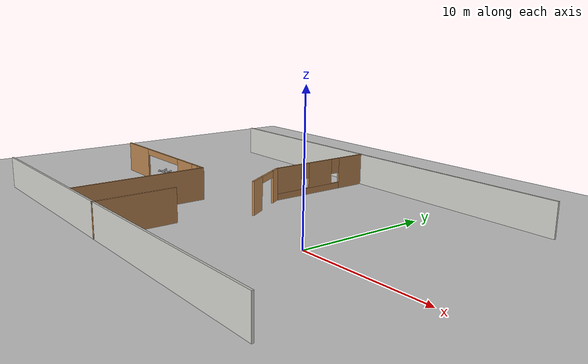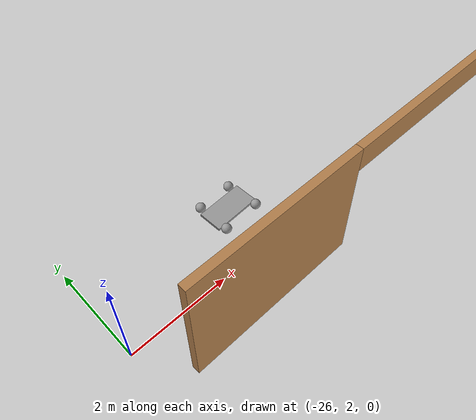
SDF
<sdf version="1.6">
 <world name="default">
  <model name="ground_plane">
   <static>1</static>
   <link name="link">
    <collision name="collision">
     <geometry><plane><normal>0 0 1</normal><size>100 100</size></plane></geometry>
     <surface>
      <contact><collide_bitmask>65535</collide_bitmask></contact>
      <friction><ode><mu>100</mu><mu2>50</mu2></ode></friction>
     </surface>
    </collision>
    <visual name="visual">
     <cast_shadows>0</cast_shadows>
     <geometry><plane><normal>0 0 1</normal><size>100 100</size></plane></geometry>
     <material>
      <script><uri>file://media/materials/scripts/gazebo.material</uri><name>Gazebo/Grey</name></script>
     </material>
    </visual>
   </link>
  </model>
  <model name="bigHouse">
   <pose>-26.8831 -3.8622 0 0 -0 0</pose>
   <link name="Wall_10">
    <pose>7.59462 4.97423 0 0 -0 0</pose>
    <visual name="Wall_10_Visual_0">
     <pose>-4.3849 0 1.25 0 -0 0</pose>
     <geometry><box><size>3.48019 0.15 2.5</size></box></geometry>
     <material>
      <script><uri>file://media/materials/scripts/gazebo.material</uri><name>Gazebo/Wood</name></script>
      <ambient>1 1 1 1</ambient>
     </material>
     <meta><layer>0</layer></meta>
    </visual>
    <collision name="Wall_10_Collision_0">
     <geometry><box><size>3.48019 0.15 2.5</size></box></geometry>
     <pose>-4.3849 0 1.25 0 -0 0</pose>
    </collision>
    <visual name="Wall_10_Visual_1">
     <pose>3.45765 0 1.25 0 -0 0</pose>
     <geometry><box><size>2.20491 0.15 2.5</size></box></geometry>
     <material>
      <script><uri>file://media/materials/scripts/gazebo.material</uri><name>Gazebo/Wood</name></script>
      <ambient>1 1 1 1</ambient>
     </material>
     <meta><layer>0</layer></meta>
    </visual>
    <collision name="Wall_10_Collision_1">
     <geometry><box><size>2.20491 0.15 2.5</size></box></geometry>
     <pose>3.45765 0 1.25 0 -0 0</pose>
    </collision>
    <visual name="Wall_10_Visual_2">
     <pose>5.34255 0 0.25 0 -0 0</pose>
     <geometry><box><size>1.56489 0.15 0.5</size></box></geometry>
     <material>
      <script><uri>file://media/materials/scripts/gazebo.material</uri><name>Gazebo/Wood</name></script>
      <ambient>1 1 1 1</ambient>
     </material>
     <meta><layer>0</layer></meta>
    </visual>
    <collision name="Wall_10_Collision_2">
     <geometry><box><size>1.56489 0.15 0.5</size></box></geometry>
     <pose>5.34255 0 0.25 0 -0 0</pose>
    </collision>
    <visual name="Wall_10_Visual_3">
     <pose>5.74255 0 1.5 0 -0 0</pose>
     <geometry><box><size>0.764895 0.15 2</size></box></geometry>
     <material>
      <script><uri>file://media/materials/scripts/gazebo.material</uri><name>Gazebo/Wood</name></script>
      <ambient>1 1 1 1</ambient>
     </material>
     <meta><layer>0</layer></meta>
    </visual>
    <collision name="Wall_10_Collision_3">
     <geometry><box><size>0.764895 0.15 2</size></box></geometry>
     <pose>5.74255 0 1.5 0 -0 0</pose>
    </collision>
    <visual name="Wall_10_Visual_4">
     <pose>4.96011 0 1.9 0 -0 0</pose>
     <geometry><box><size>0.8 0.15 1.2</size></box></geometry>
     <material>
      <script><uri>file://media/materials/scripts/gazebo.material</uri><name>Gazebo/Wood</name></script>
      <ambient>1 1 1 1</ambient>
     </material>
     <meta><layer>0</layer></meta>
    </visual>
    <collision name="Wall_10_Collision_4">
     <geometry><box><size>0.8 0.15 1.2</size></box></geometry>
     <pose>4.96011 0 1.9 0 -0 0</pose>
    </collision>
    <visual name="Wall_10_Visual_5">
     <pose>-0.144808 0 2.25 0 -0 0</pose>
     <geometry><box><size>5 0.15 0.5</size></box></geometry>
     <material>
      <script><uri>file://media/materials/scripts/gazebo.material</uri><name>Gazebo/Wood</name></script>
      <ambient>1 1 1 1</ambient>
     </material>
     <meta><layer>0</layer></meta>
    </visual>
    <collision name="Wall_10_Collision_5">
     <geometry><box><size>5 0.15 0.5</size></box></geometry>
     <pose>-0.144808 0 2.25 0 -0 0</pose>
    </collision>
   </link>
   <link name="Wall_11">
    <collision name="Wall_11_Collision">
     <geometry><box><size>10.5 0.15 2.5</size></box></geometry>
     <pose>0 0 1.25 0 -0 0</pose>
    </collision>
    <visual name="Wall_11_Visual">
     <pose>0 0 1.25 0 -0 0</pose>
     <geometry><box><size>10.5 0.15 2.5</size></box></geometry>
     <material>
      <script><uri>file://media/materials/scripts/gazebo.material</uri><name>Gazebo/Wood</name></script>
      <ambient>1 1 1 1</ambient>
     </material>
     <meta><layer>0</layer></meta>
    </visual>
    <pose>13.6446 -0.200766 0 0 0 -1.5708</pose>
   </link>
   <link name="Wall_15">
    <collision name="Wall_15_Collision">
     <geometry><box><size>6.06003 0.15 2.5</size></box></geometry>
     <pose>0 0 1.25 0 -0 0</pose>
    </collision>
    <visual name="Wall_15_Visual">
     <pose>0 0 1.25 0 -0 0</pose>
     <geometry><box><size>6.06003 0.15 2.5</size></box></geometry>
     <material>
      <script><uri>file://media/materials/scripts/gazebo.material</uri><name>Gazebo/Wood</name></script>
      <ambient>1 1 1 1</ambient>
     </material>
     <meta><layer>0</layer></meta>
    </visual>
    <pose>17.5861 -2.57747 0 0 -0 1.5708</pose>
   </link>
   <link name="Wall_17">
    <pose>17.1284 13.8352 0 0 0 -1.5708</pose>
    <visual name="Wall_17_Visual_0">
     <pose>-3.18124 0 1.25 0 -0 0</pose>
     <geometry><box><size>2.63752 0.15 2.5</size></box></geometry>
     <material>
      <script><uri>file://media/materials/scripts/gazebo.material</uri><name>Gazebo/Wood</name></script>
      <ambient>1 1 1 1</ambient>
     </material>
     <meta><layer>0</layer></meta>
    </visual>
    <collision name="Wall_17_Collision_0">
     <geometry><box><size>2.63752 0.15 2.5</size></box></geometry>
     <pose>-3.18124 0 1.25 0 -0 0</pose>
    </collision>
    <visual name="Wall_17_Visual_1">
     <pose>1.31876 0 0.25 0 -0 0</pose>
     <geometry><box><size>6.36248 0.15 0.5</size></box></geometry>
     <material>
      <script><uri>file://media/materials/scripts/gazebo.material</uri><name>Gazebo/Wood</name></script>
      <ambient>1 1 1 1</ambient>
     </material>
     <meta><layer>0</layer></meta>
    </visual>
    <collision name="Wall_17_Collision_1">
     <geometry><box><size>6.36248 0.15 0.5</size></box></geometry>
     <pose>1.31876 0 0.25 0 -0 0</pose>
    </collision>
    <visual name="Wall_17_Visual_2">
     <pose>0.110682 0 1.5 0 -0 0</pose>
     <geometry><box><size>2.34633 0.15 2</size></box></geometry>
     <material>
      <script><uri>file://media/materials/scripts/gazebo.material</uri><name>Gazebo/Wood</name></script>
      <ambient>1 1 1 1</ambient>
     </material>
     <meta><layer>0</layer></meta>
    </visual>
    <collision name="Wall_17_Collision_2">
     <geometry><box><size>2.34633 0.15 2</size></box></geometry>
     <pose>0.110682 0 1.5 0 -0 0</pose>
    </collision>
    <visual name="Wall_17_Visual_3">
     <pose>3.29192 0 1.5 0 -0 0</pose>
     <geometry><box><size>2.41615 0.15 2</size></box></geometry>
     <material>
      <script><uri>file://media/materials/scripts/gazebo.material</uri><name>Gazebo/Wood</name></script>
      <ambient>1 1 1 1</ambient>
     </material>
     <meta><layer>0</layer></meta>
    </visual>
    <collision name="Wall_17_Collision_3">
     <geometry><box><size>2.41615 0.15 2</size></box></geometry>
     <pose>3.29192 0 1.5 0 -0 0</pose>
    </collision>
    <visual name="Wall_17_Visual_4">
     <pose>-1.46248 0 1.9 0 -0 0</pose>
     <geometry><box><size>0.8 0.15 1.2</size></box></geometry>
     <material>
      <script><uri>file://media/materials/scripts/gazebo.material</uri><name>Gazebo/Wood</name></script>
      <ambient>1 1 1 1</ambient>
     </material>
     <meta><layer>0</layer></meta>
    </visual>
    <collision name="Wall_17_Collision_4">
     <geometry><box><size>0.8 0.15 1.2</size></box></geometry>
     <pose>-1.46248 0 1.9 0 -0 0</pose>
    </collision>
    <visual name="Wall_17_Visual_5">
     <pose>1.68385 0 1.9 0 -0 0</pose>
     <geometry><box><size>0.8 0.15 1.2</size></box></geometry>
     <material>
      <script><uri>file://media/materials/scripts/gazebo.material</uri><name>Gazebo/Wood</name></script>
      <ambient>1 1 1 1</ambient>
     </material>
     <meta><layer>0</layer></meta>
    </visual>
    <collision name="Wall_17_Collision_5">
     <geometry><box><size>0.8 0.15 1.2</size></box></geometry>
     <pose>1.68385 0 1.9 0 -0 0</pose>
    </collision>
   </link>
   <link name="Wall_18">
    <pose>18.2159 7.5266 0 0 0 -1.0472</pose>
    <visual name="Wall_18_Visual_0">
     <pose>-1.74861 0 1.25 0 -0 0</pose>
     <geometry><box><size>1.00278 0.15 2.5</size></box></geometry>
     <material>
      <script><uri>file://media/materials/scripts/gazebo.material</uri><name>Gazebo/Wood</name></script>
      <ambient>1 1 1 1</ambient>
     </material>
     <meta><layer>0</layer></meta>
    </visual>
    <collision name="Wall_18_Collision_0">
     <geometry><box><size>1.00278 0.15 2.5</size></box></geometry>
     <pose>-1.74861 0 1.25 0 -0 0</pose>
    </collision>
    <visual name="Wall_18_Visual_1">
     <pose>1.50139 0 1.25 0 -0 0</pose>
     <geometry><box><size>1.49722 0.15 2.5</size></box></geometry>
     <material>
      <script><uri>file://media/materials/scripts/gazebo.material</uri><name>Gazebo/Wood</name></script>
      <ambient>1 1 1 1</ambient>
     </material>
     <meta><layer>0</layer></meta>
    </visual>
    <collision name="Wall_18_Collision_1">
     <geometry><box><size>1.49722 0.15 2.5</size></box></geometry>
     <pose>1.50139 0 1.25 0 -0 0</pose>
    </collision>
    <visual name="Wall_18_Visual_2">
     <pose>-0.247217 0 2.25 0 -0 0</pose>
     <geometry><box><size>2 0.15 0.5</size></box></geometry>
     <material>
      <script><uri>file://media/materials/scripts/gazebo.material</uri><name>Gazebo/Wood</name></script>
      <ambient>1 1 1 1</ambient>
     </material>
     <meta><layer>0</layer></meta>
    </visual>
    <collision name="Wall_18_Collision_2">
     <geometry><box><size>2 0.15 0.5</size></box></geometry>
     <pose>-0.247217 0 2.25 0 -0 0</pose>
    </collision>
   </link>
   <link name="Wall_6">
    <collision name="Wall_6_Collision">
     <geometry><box><size>33.25 0.15 2.5</size></box></geometry>
     <pose>0 0 1.25 0 -0 0</pose>
    </collision>
    <visual name="Wall_6_Visual">
     <pose>0 0 1.25 0 -0 0</pose>
     <geometry><box><size>33.25 0.15 2.5</size></box></geometry>
     <material>
      <script><uri>file://media/materials/scripts/gazebo.material</uri><name>Gazebo/CeilingTiled</name></script>
      <ambient>1 1 1 1</ambient>
     </material>
     <meta><layer>0</layer></meta>
    </visual>
    <pose>18.0322 -5.51252 0 0 -0 0</pose>
   </link>
   <link name="Wall_8">
    <collision name="Wall_8_Collision">
     <geometry><box><size>33.2509 0.15 2.5</size></box></geometry>
     <pose>0 0 1.25 0 -0 0</pose>
    </collision>
    <visual name="Wall_8_Visual">
     <pose>0 0 1.25 0 -0 0</pose>
     <geometry><box><size>33.2509 0.15 2.5</size></box></geometry>
     <material>
      <script><uri>file://media/materials/scripts/gazebo.material</uri><name>Gazebo/CeilingTiled</name></script>
      <ambient>1 1 1 1</ambient>
     </material>
     <meta><layer>0</layer></meta>
    </visual>
    <pose>18.0322 18.2125 0 0 -0 3.13404</pose>
   </link>
   <static>1</static>
  </model>
  <model name="funkybot">
   <link name="link_0">
    <pose>0.008 0 -0.042 0 -0 0</pose>
    <inertial>
     <mass>1</mass>
     <inertia>
      <ixx>0.166667</ixx>
      <ixy>0</ixy>
      <ixz>0</ixz>
      <iyy>0.166667</iyy>
      <iyz>0</iyz>
      <izz>0.166667</izz>
     </inertia>
    </inertial>
    <visual name="visual">
     <geometry><box><size>1 0.5 0.05</size></box></geometry>
     <material>
      <lighting>1</lighting>
      <script><uri>file://media/materials/scripts/gazebo.material</uri><name>Gazebo/Grey</name></script>
      <shader type="pixel"><normal_map>__default__</normal_map></shader>
      <ambient>0.3 0.3 0.3 1</ambient>
      <diffuse>0.7 0.7 0.7 1</diffuse>
      <specular>0.01 0.01 0.01 1</specular>
      <emissive>0 0 0 1</emissive>
     </material>
    </visual>
    <collision name="collision">
     <geometry><box><size>1 0.5 0.05</size></box></geometry>
     <surface>
      <friction>
       <ode><mu>1</mu><mu2>1</mu2><fdir1>0 0 0</fdir1><slip1>0</slip1><slip2>0</slip2></ode>
       <torsional>
        <coefficient>1</coefficient>
        <patch_radius>0</patch_radius>
        <surface_radius>0</surface_radius>
        <use_patch_radius>1</use_patch_radius>
        <ode><slip>0</slip></ode>
       </torsional>
      </friction>
      <bounce><restitution_coefficient>0</restitution_coefficient><threshold>1e+06</threshold></bounce>
      <contact>
       <collide_without_contact>0</collide_without_contact>
       <collide_without_contact_bitmask>1</collide_without_contact_bitmask>
       <collide_bitmask>1</collide_bitmask>
       <ode>
        <soft_cfm>0</soft_cfm>
        <soft_erp>0.2</soft_erp>
        <kp>1e+13</kp>
        <kd>1</kd>
        <max_vel>0.01</max_vel>
        <min_depth>0</min_depth>
       </ode>
       <bullet>
        <split_impulse>1</split_impulse>
        <split_impulse_penetration_threshold>-0.01</split_impulse_penetration_threshold>
        <soft_cfm>0</soft_cfm>
        <soft_erp>0.2</soft_erp>
        <kp>1e+13</kp>
        <kd>1</kd>
       </bullet>
      </contact>
     </surface>
    </collision>
   </link>
   <link name="link_2">
    <pose>0.368 0.35 -0.0045 0 -0 0</pose>
    <inertial>
     <mass>1</mass>
     <inertia><ixx>0.1</ixx><ixy>0</ixy><ixz>0</ixz><iyy>0.1</iyy><iyz>0</iyz><izz>0.1</izz></inertia>
    </inertial>
    <visual name="visual">
     <geometry><sphere><radius>0.1</radius></sphere></geometry>
     <material>
      <lighting>1</lighting>
      <script><uri>file://media/materials/scripts/gazebo.material</uri><name>Gazebo/Grey</name></script>
      <shader type="pixel"><normal_map>__default__</normal_map></shader>
      <ambient>0.3 0.3 0.3 1</ambient>
      <diffuse>0.7 0.7 0.7 1</diffuse>
      <specular>0.01 0.01 0.01 1</specular>
      <emissive>0 0 0 1</emissive>
     </material>
    </visual>
    <collision name="collision">
     <geometry><sphere><radius>0.1</radius></sphere></geometry>
     <surface>
      <friction>
       <ode><mu>1</mu><mu2>1</mu2><fdir1>0 0 0</fdir1><slip1>0</slip1><slip2>0</slip2></ode>
       <torsional>
        <coefficient>1</coefficient>
        <patch_radius>0</patch_radius>
        <surface_radius>0</surface_radius>
        <use_patch_radius>1</use_patch_radius>
        <ode><slip>0</slip></ode>
       </torsional>
      </friction>
      <bounce><restitution_coefficient>0</restitution_coefficient><threshold>1e+06</threshold></bounce>
      <contact>
       <collide_without_contact>0</collide_without_contact>
       <collide_without_contact_bitmask>1</collide_without_contact_bitmask>
       <collide_bitmask>1</collide_bitmask>
       <ode>
        <soft_cfm>0</soft_cfm>
        <soft_erp>0.2</soft_erp>
        <kp>1e+13</kp>
        <kd>1</kd>
        <max_vel>0.01</max_vel>
        <min_depth>0</min_depth>
       </ode>
       <bullet>
        <split_impulse>1</split_impulse>
        <split_impulse_penetration_threshold>-0.01</split_impulse_penetration_threshold>
        <soft_cfm>0</soft_cfm>
        <soft_erp>0.2</soft_erp>
        <kp>1e+13</kp>
        <kd>1</kd>
       </bullet>
      </contact>
     </surface>
    </collision>
   </link>
   <link name="link_2_clone">
    <pose>-0.392 0.35 0.0155 0 -0 0</pose>
    <inertial>
     <mass>1</mass>
     <inertia><ixx>0.1</ixx><ixy>0</ixy><ixz>0</ixz><iyy>0.1</iyy><iyz>0</iyz><izz>0.1</izz></inertia>
    </inertial>
    <visual name="visual">
     <geometry><sphere><radius>0.1</radius></sphere></geometry>
     <material>
      <lighting>1</lighting>
      <script><uri>file://media/materials/scripts/gazebo.material</uri><name>Gazebo/Grey</name></script>
      <shader type="pixel"><normal_map>__default__</normal_map></shader>
      <ambient>0.3 0.3 0.3 1</ambient>
      <diffuse>0.7 0.7 0.7 1</diffuse>
      <specular>0.01 0.01 0.01 1</specular>
      <emissive>0 0 0 1</emissive>
     </material>
    </visual>
    <collision name="collision">
     <geometry><sphere><radius>0.1</radius></sphere></geometry>
     <surface>
      <friction>
       <ode><mu>1</mu><mu2>1</mu2><fdir1>0 0 0</fdir1><slip1>0</slip1><slip2>0</slip2></ode>
       <torsional>
        <coefficient>1</coefficient>
        <patch_radius>0</patch_radius>
        <surface_radius>0</surface_radius>
        <use_patch_radius>1</use_patch_radius>
        <ode><slip>0</slip></ode>
       </torsional>
      </friction>
      <bounce><restitution_coefficient>0</restitution_coefficient><threshold>1e+06</threshold></bounce>
      <contact>
       <collide_without_contact>0</collide_without_contact>
       <collide_without_contact_bitmask>1</collide_without_contact_bitmask>
       <collide_bitmask>1</collide_bitmask>
       <ode>
        <soft_cfm>0</soft_cfm>
        <soft_erp>0.2</soft_erp>
        <kp>1e+13</kp>
        <kd>1</kd>
        <max_vel>0.01</max_vel>
        <min_depth>0</min_depth>
       </ode>
       <bullet>
        <split_impulse>1</split_impulse>
        <split_impulse_penetration_threshold>-0.01</split_impulse_penetration_threshold>
        <soft_cfm>0</soft_cfm>
        <soft_erp>0.2</soft_erp>
        <kp>1e+13</kp>
        <kd>1</kd>
       </bullet>
      </contact>
     </surface>
    </collision>
   </link>
   <link name="link_2_clone_0">
    <pose>-0.392 -0.35 0.0155 0 -0 0</pose>
    <inertial>
     <mass>1</mass>
     <inertia><ixx>0.1</ixx><ixy>0</ixy><ixz>0</ixz><iyy>0.1</iyy><iyz>0</iyz><izz>0.1</izz></inertia>
    </inertial>
    <visual name="visual">
     <geometry><sphere><radius>0.1</radius></sphere></geometry>
     <material>
      <lighting>1</lighting>
      <script><uri>file://media/materials/scripts/gazebo.material</uri><name>Gazebo/Grey</name></script>
      <shader type="pixel"><normal_map>__default__</normal_map></shader>
      <ambient>0.3 0.3 0.3 1</ambient>
      <diffuse>0.7 0.7 0.7 1</diffuse>
      <specular>0.01 0.01 0.01 1</specular>
      <emissive>0 0 0 1</emissive>
     </material>
    </visual>
    <collision name="collision">
     <geometry><sphere><radius>0.1</radius></sphere></geometry>
     <surface>
      <friction>
       <ode><mu>1</mu><mu2>1</mu2><fdir1>0 0 0</fdir1><slip1>0</slip1><slip2>0</slip2></ode>
       <torsional>
        <coefficient>1</coefficient>
        <patch_radius>0</patch_radius>
        <surface_radius>0</surface_radius>
        <use_patch_radius>1</use_patch_radius>
        <ode><slip>0</slip></ode>
       </torsional>
      </friction>
      <bounce><restitution_coefficient>0</restitution_coefficient><threshold>1e+06</threshold></bounce>
      <contact>
       <collide_without_contact>0</collide_without_contact>
       <collide_without_contact_bitmask>1</collide_without_contact_bitmask>
       <collide_bitmask>1</collide_bitmask>
       <ode>
        <soft_cfm>0</soft_cfm>
        <soft_erp>0.2</soft_erp>
        <kp>1e+13</kp>
        <kd>1</kd>
        <max_vel>0.01</max_vel>
        <min_depth>0</min_depth>
       </ode>
       <bullet>
        <split_impulse>1</split_impulse>
        <split_impulse_penetration_threshold>-0.01</split_impulse_penetration_threshold>
        <soft_cfm>0</soft_cfm>
        <soft_erp>0.2</soft_erp>
        <kp>1e+13</kp>
        <kd>1</kd>
       </bullet>
      </contact>
     </surface>
    </collision>
   </link>
   <link name="link_2_clone_1">
    <pose>0.408 -0.35 0.0155 0 -0 0</pose>
    <inertial>
     <mass>1</mass>
     <inertia><ixx>0.1</ixx><ixy>0</ixy><ixz>0</ixz><iyy>0.1</iyy><iyz>0</iyz><izz>0.1</izz></inertia>
    </inertial>
    <visual name="visual">
     <geometry><sphere><radius>0.1</radius></sphere></geometry>
     <material>
      <lighting>1</lighting>
      <script><uri>file://media/materials/scripts/gazebo.material</uri><name>Gazebo/Grey</name></script>
      <shader type="pixel"><normal_map>__default__</normal_map></shader>
      <ambient>0.3 0.3 0.3 1</ambient>
      <diffuse>0.7 0.7 0.7 1</diffuse>
      <specular>0.01 0.01 0.01 1</specular>
      <emissive>0 0 0 1</emissive>
     </material>
    </visual>
    <collision name="collision">
     <geometry><sphere><radius>0.1</radius></sphere></geometry>
     <surface>
      <friction>
       <ode><mu>1</mu><mu2>1</mu2><fdir1>0 0 0</fdir1><slip1>0</slip1><slip2>0</slip2></ode>
       <torsional>
        <coefficient>1</coefficient>
        <patch_radius>0</patch_radius>
        <surface_radius>0</surface_radius>
        <use_patch_radius>1</use_patch_radius>
        <ode><slip>0</slip></ode>
       </torsional>
      </friction>
      <bounce><restitution_coefficient>0</restitution_coefficient><threshold>1e+06</threshold></bounce>
      <contact>
       <collide_without_contact>0</collide_without_contact>
       <collide_without_contact_bitmask>1</collide_without_contact_bitmask>
       <collide_bitmask>1</collide_bitmask>
       <ode>
        <soft_cfm>0</soft_cfm>
        <soft_erp>0.2</soft_erp>
        <kp>1e+13</kp>
        <kd>1</kd>
        <max_vel>0.01</max_vel>
        <min_depth>0</min_depth>
       </ode>
       <bullet>
        <split_impulse>1</split_impulse>
        <split_impulse_penetration_threshold>-0.01</split_impulse_penetration_threshold>
        <soft_cfm>0</soft_cfm>
        <soft_erp>0.2</soft_erp>
        <kp>1e+13</kp>
        <kd>1</kd>
       </bullet>
      </contact>
     </surface>
    </collision>
   </link>
   <joint name="link_0_JOINT_0" type="revolute">
    <parent>link_0</parent>
    <child>link_2_clone_1</child>
    <axis>
     <xyz>0 1 0</xyz>
     <use_parent_model_frame>0</use_parent_model_frame>
     <limit>
      <lower>-1.79769e+308</lower>
      <upper>1.79769e+308</upper>
      <effort>-1</effort>
      <velocity>-1</velocity>
     </limit>
     <dynamics>
      <spring_reference>0</spring_reference>
      <spring_stiffness>0</spring_stiffness>
      <damping>0</damping>
     </dynamics>
    </axis>
    <physics>
     <ode><limit><cfm>0</cfm><erp>0.2</erp></limit><suspension><cfm>0</cfm><erp>0.2</erp></suspension></ode>
    </physics>
   </joint>
   <joint name="link_0_JOINT_1" type="revolute">
    <parent>link_0</parent>
    <child>link_2_clone_0</child>
    <axis>
     <xyz>0 1 0</xyz>
     <use_parent_model_frame>0</use_parent_model_frame>
     <limit>
      <lower>-1.79769e+308</lower>
      <upper>1.79769e+308</upper>
      <effort>-1</effort>
      <velocity>-1</velocity>
     </limit>
     <dynamics>
      <spring_reference>0</spring_reference>
      <spring_stiffness>0</spring_stiffness>
      <damping>0</damping>
     </dynamics>
    </axis>
    <physics>
     <ode><limit><cfm>0</cfm><erp>0.2</erp></limit><suspension><cfm>0</cfm><erp>0.2</erp></suspension></ode>
    </physics>
   </joint>
   <joint name="link_0_JOINT_2" type="revolute">
    <parent>link_0</parent>
    <child>link_2_clone</child>
    <axis>
     <xyz>0 0 1</xyz>
     <use_parent_model_frame>0</use_parent_model_frame>
     <limit>
      <lower>-1.79769e+308</lower>
      <upper>1.79769e+308</upper>
      <effort>-1</effort>
      <velocity>-1</velocity>
     </limit>
     <dynamics>
      <spring_reference>0</spring_reference>
      <spring_stiffness>0</spring_stiffness>
      <damping>0</damping>
     </dynamics>
    </axis>
    <physics>
     <ode><limit><cfm>0</cfm><erp>0.2</erp></limit><suspension><cfm>0</cfm><erp>0.2</erp></suspension></ode>
    </physics>
   </joint>
   <joint name="link_0_JOINT_4" type="revolute">
    <parent>link_0</parent>
    <child>link_2</child>
    <axis>
     <xyz>1 0 0</xyz>
     <use_parent_model_frame>0</use_parent_model_frame>
     <limit>
      <lower>-1.79769e+308</lower>
      <upper>1.79769e+308</upper>
      <effort>-1</effort>
      <velocity>-1</velocity>
     </limit>
     <dynamics>
      <spring_reference>0</spring_reference>
      <spring_stiffness>0</spring_stiffness>
      <damping>0</damping>
     </dynamics>
    </axis>
    <physics>
     <ode><limit><cfm>0</cfm><erp>0.2</erp></limit><suspension><cfm>0</cfm><erp>0.2</erp></suspension></ode>
    </physics>
   </joint>
   <static>0</static>
   <pose>-22.9008 3.09708 0.094501 0.028513 -4.2e-05 0.050246</pose>
  </model>
 </world>
</sdf>
